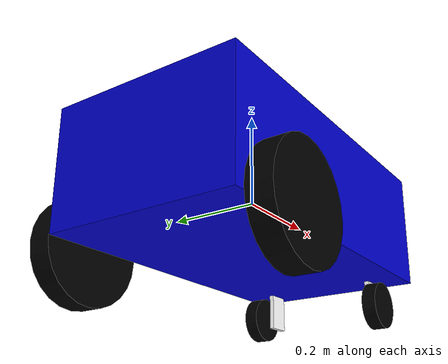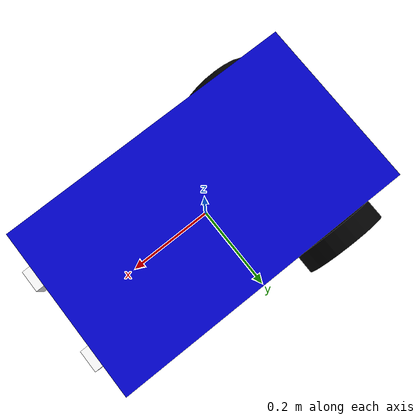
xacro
<?xml version="1.0"?>
<robot name="lmwr_diff_ultra_xacro" xmlns:xacro="http://ros.org/wiki/xacro">

  <xacro:property name="body_lenght" value="0.7" />
  <xacro:property name="body_width" value="0.4" />
  <xacro:property name="body_height" value="0.25" />
  <xacro:property name="traction_wheel_radius" value="0.11" />
  <xacro:property name="traction_wheel_width" value="0.05" />
  <xacro:property name="aux_wheel_radius" value="0.05" />
  <xacro:property name="aux_wheel_width" value="0.03" />
  <xacro:property name="support_lenght" value="0.6" />
  <xacro:property name="baselen" value="0.4" />
  <xacro:property name="wheeldiam" value="0.07" />

  <!--xacro:property name="pi" value="3.1415" /-->

  <material name="blue">
    <color rgba="0 0 0.8 1"/>
  </material>

  <material name="black">
    <color rgba="0 0 0 1"/>
  </material>

  <material name="white">
    <color rgba="1 1 1 1"/>
  </material>

  <xacro:macro name="default_inertial" params="mass">
    <inertial>
      <mass value="${mass}" />
      <inertia ixx="1.0" ixy="0.0" ixz="0.0" iyy="1.0" iyz="0.0" izz="1.0" />
    </inertial>
  </xacro:macro>

  <link name="main_body">
    <visual>
      <geometry>
        <box size="${body_lenght} ${body_width} ${body_height}"/>
      </geometry>
      <material name="blue"/>
    </visual>
    <collision>
      <geometry>
        <box size="${body_lenght} ${body_width} ${body_height}"/>
      </geometry>
    </collision>
    <xacro:default_inertial mass="13"/>
  </link>

  <xacro:macro name="front_sensor_sup_link" params="name side y_pos">
    <link name="${name}_front_sensor">
      <visual>
        <geometry>
          <box size="0.05 0.05 0.05"/>
        </geometry>
        <origin xyz="0 0 -0.05"/>
        <material name="white"/>
      </visual>
      <collision>
        <geometry>
          <box size="0.05 0.05 0.05"/>
        </geometry>
        <origin xyz="0 0 -0.05"/>
      </collision>
      <xacro:default_inertial mass="0.01"/>
    </link>

    <joint name="${side}_front_base_joint" type="fixed">
      <axis rpy="0 0 0" xyz="0 0 1"/>
      <parent link="main_body"/>
      <child link="${name}_front_sensor"/>
      <origin xyz="${body_lenght/2} ${side*y_pos} 0.125" />
    </joint>

    <gazebo reference="${name}_front_sensor">
     <sensor type="ray" name="TeraRanger">
      <pose>0 0 0 0 0 0</pose>
      <visualize>true</visualize>
      <update_rate>50</update_rate>
      <ray>
         <scan>
            <horizontal>
               <samples>10</samples>
               <resolution>1</resolution>
               <min_angle>-0.14835</min_angle>
               <max_angle>0.14835</max_angle>
            </horizontal>
            <vertical>
               <samples>10</samples>
               <resolution>1</resolution>
               <min_angle>-0.14835</min_angle>
               <max_angle>0.14835</max_angle>
            </vertical>
         </scan>
         <range>
            <min>0.01</min>
            <max>2</max>
            <resolution>0.02</resolution>
         </range>
      </ray>
      <plugin filename="libgazebo_ros_range.so" name="gazebo_ros_range">
        <gaussianNoise>0.005</gaussianNoise>
        <alwaysOn>true</alwaysOn>
        <updateRate>50</updateRate>
        <topicName>sensor/${name}_ultrasonic_front</topicName>
        <frameName>${name}_front_sensor</frameName>
        <radiation>INFRARED</radiation>
        <fov>0.2967</fov>
      </plugin>
     </sensor>
   </gazebo>

  </xacro:macro>

  <xacro:macro name="aux_wheel" params="side reflect">

    <link name="${side}_aux_wheel">
      <visual>
        <!-- origin xyz="0 ${reflect*aux_wheel_width/2} 0" rpy="${pi/2} 0 0" / -->
        <origin xyz="0 0 0" rpy="${pi/2} 0 0" />
        <geometry>
          <cylinder radius="${aux_wheel_radius}" length="${aux_wheel_width}"/>
        </geometry>
        <material name="black"/>
      </visual>
      <collision>
        <!-- origin xyz="0 ${reflect*aux_wheel_width/2} 0" rpy="${pi/2} 0 0" / -->
        <origin xyz="0 0 0" rpy="${pi/2} 0 0" />
        <geometry>
          <cylinder radius="${aux_wheel_radius}" length="${aux_wheel_width}"/>
        </geometry>
      </collision>
      <xacro:default_inertial mass="1"/>
    </link>
    <joint name="${side}_aux_wheel_joint" type="continuous">
      <axis xyz="0 1 0" rpy="0 0 0" />
      <parent link="${side}_front_support"/>
      <child link="${side}_aux_wheel"/>
      <origin xyz="-0.03 0 -0.06" rpy="0 0 0"/>
      <!-- origin xyz="-0.03 0 -0.06" rpy="0 0 0"/ -->
    </joint>

    <!-- This block provides the simulator (Gazebo) with information on a few additional
    physical properties. See http://gazebosim.org/tutorials/?tut=ros_urdf for more-->
    <gazebo reference="${side}_aux_wheel">
      <mu1 value="200.0"/>
      <mu2 value="100.0"/>
      <kp value="10000000.0" />
      <kd value="1.0" />
      <material>Gazebo/Grey</material>
    </gazebo>

  </xacro:macro>

  <xacro:macro name="support" params="side displacement reflect">
    <link name="${side}_front_support">
      <visual>
        <geometry>
          <box size="0.05 0.01 0.08"/>
        </geometry>
        <origin xyz="0 ${displacement} -0.04"/>
        <material name="white"/>
      </visual>
      <collision>
        <geometry>
          <box size="0.05 0.01 0.08"/>
        </geometry>
        <origin xyz="0 ${displacement} -0.04"/>
      </collision>
      <xacro:default_inertial mass="0.2"/>
    </link>

    <joint name="${side}_front_base_joint" type="continuous">
      <axis rpy="0 0 0" xyz="0 0 1"/>
      <parent link="main_body"/>
      <child link="${side}_front_support"/>
      <origin xyz="0.3 ${reflect*0.15} -0.125" />
    </joint>
    <xacro:aux_wheel side="${side}"  reflect="${reflect}"/>

  </xacro:macro>

  <xacro:macro name="traction_wheel" params="side reflect">

    <link name="${side}_traction_wheel">
      <visual>
        <origin xyz="0 ${reflect*traction_wheel_width/2} 0" rpy="${pi/2} 0 0" />
        <geometry>
          <cylinder radius="${traction_wheel_radius}" length="${traction_wheel_width}"/>
        </geometry>
        <material name="black"/>
      </visual>
      <collision>
        <origin xyz="0 ${reflect*traction_wheel_width/2} 0" rpy="${pi/2} 0 0" />
        <geometry>
          <cylinder radius="${traction_wheel_radius}" length="${traction_wheel_width}"/>
        </geometry>
      </collision>
      <xacro:default_inertial mass="1"/>
    </link>
    <joint name="${side}_traction_wheel_joint" type="continuous">
      <axis xyz="0 1 0" rpy="0 0 0" />
      <parent link="main_body"/>
      <child link="${side}_traction_wheel"/>
      <origin xyz="-${body_lenght/3} ${reflect*(body_width/2+0.01)} ${-body_height/2}" rpy="0 0 0"/>
    </joint>

    <!-- This block provides the simulator (Gazebo) with information on a few additional
    physical properties. See http://gazebosim.org/tutorials/?tut=ros_urdf for more-->
    <gazebo reference="${side}_traction_wheel">
      <mu1 value="200.0"/>
      <mu2 value="100.0"/>
      <kp value="10000000.0" />
      <kd value="1.0" />
      <material>Gazebo/Grey</material>
    </gazebo>

    <!-- This block connects the wheel joint to an actuator (motor), which informs both
    simulation and visualization of the robot -->
    <transmission name="${side}_traction_wheel_trans">
      <type>transmission_interface/SimpleTransmission</type>
      <actuator name="${side}_traction_wheel_motor">
        <mechanicalReduction>1</mechanicalReduction>
      </actuator>
      <joint name="${side}_traction_wheel_joint">
        <hardwareInterface>hardware_interface/VelocityJointInterface</hardwareInterface>
      </joint>
    </transmission>

  </xacro:macro>

  <xacro:traction_wheel side="left" reflect="-1"/>
  <xacro:traction_wheel side="right" reflect="1"/>

  <xacro:support side="left" displacement="${traction_wheel_width/2}" reflect="-1" />
  <xacro:support side="right" displacement="${-traction_wheel_width/2}" reflect="1" />

  <xacro:front_sensor_sup_link name="ultra_1" side="-1" y_pos="0.1" />
  <xacro:front_sensor_sup_link name="ultra_2" side="1" y_pos="0.1" />

  <!-- Gazebo plugin for ROS Control -->
  <gazebo>
    <plugin name="gazebo_ros_control" filename="libgazebo_ros_control.so">
      <robotNamespace>/</robotNamespace>
    </plugin>
  </gazebo>

</robot>
